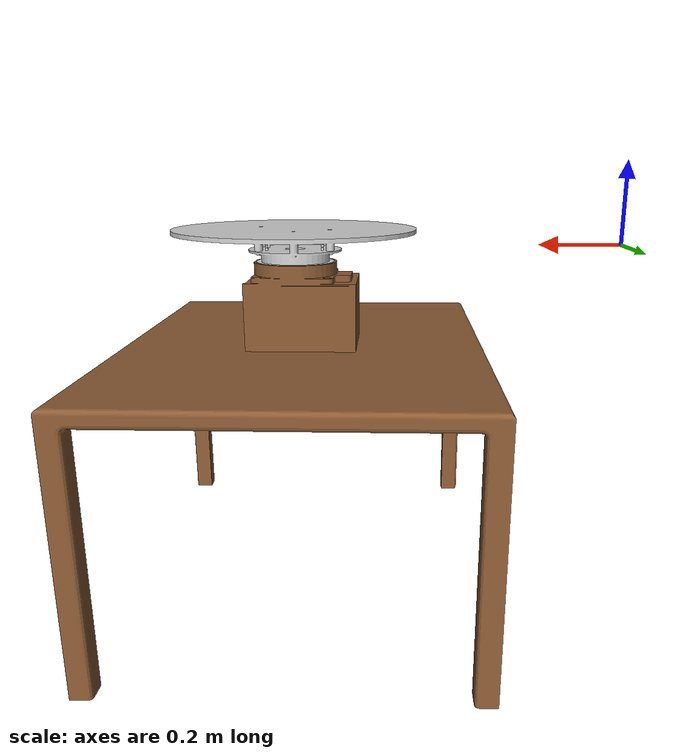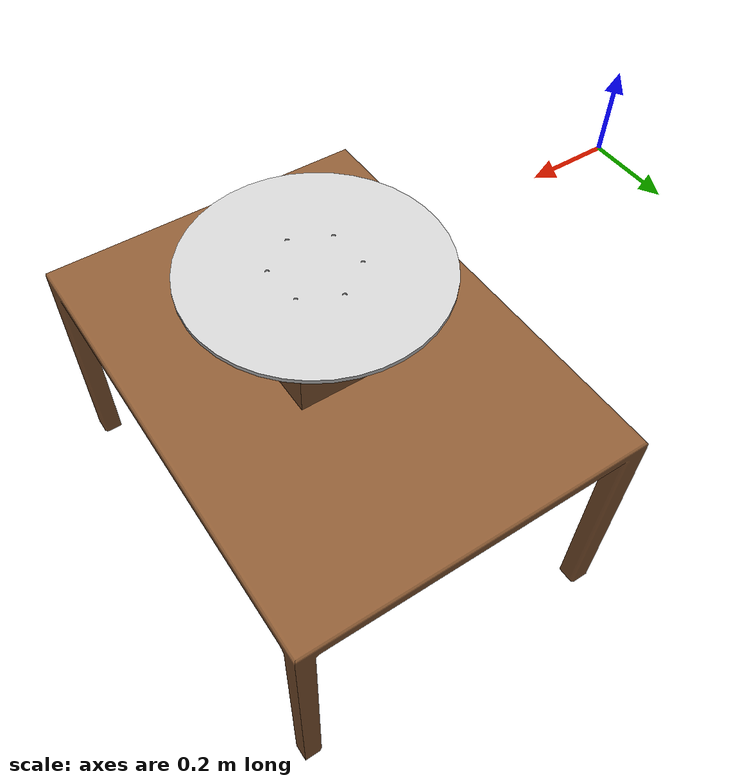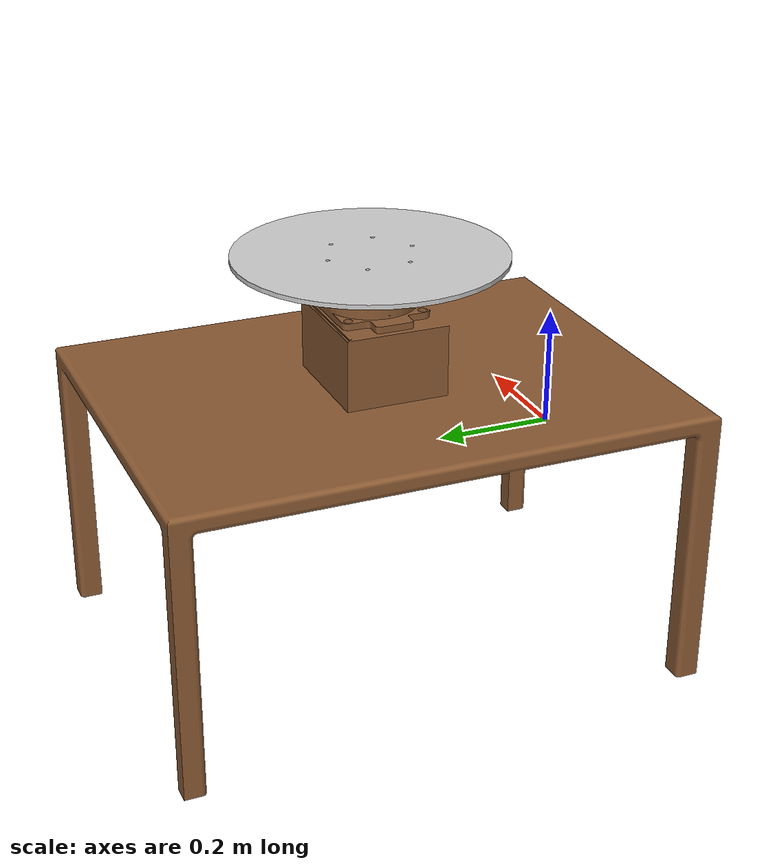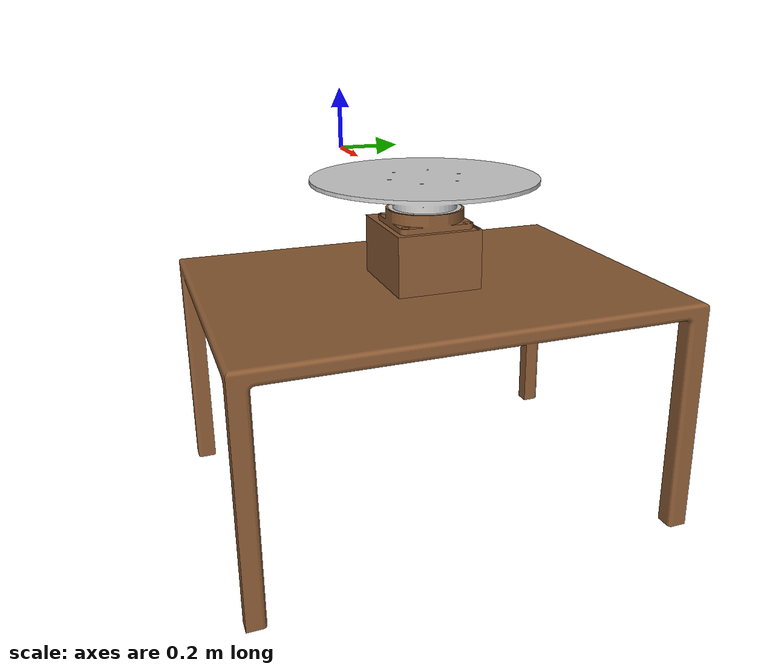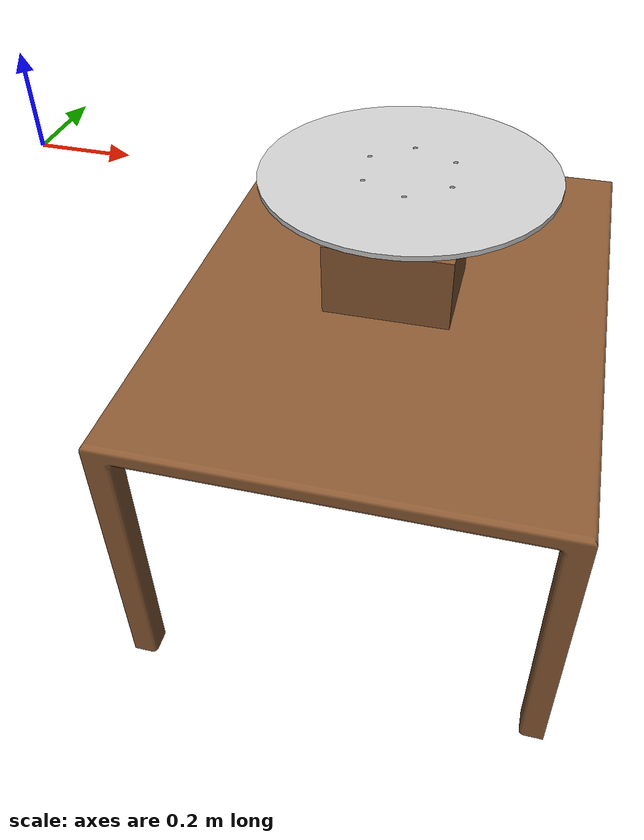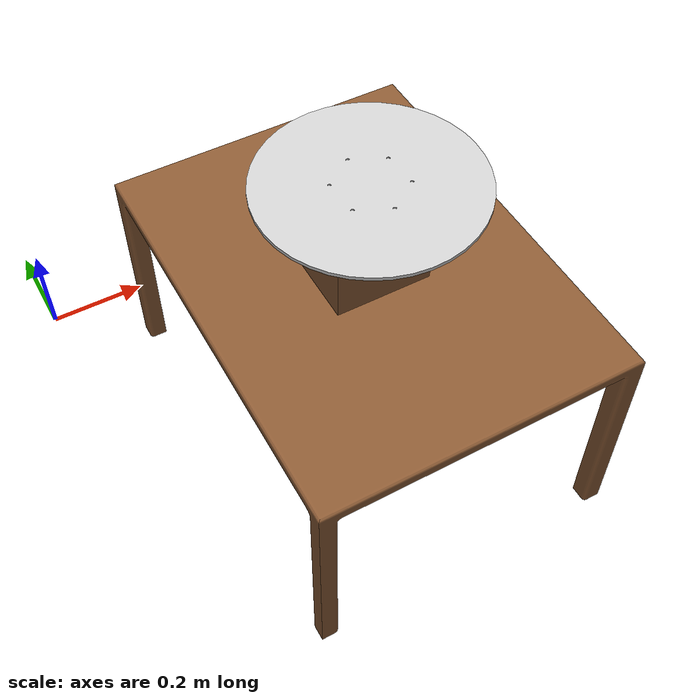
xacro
<?xml version="1.0" encoding="utf-8"?>
<robot name="turn_table" xmlns:xacro="http://www.ros.org/wiki/xacro">
  <xacro:include filename="$(find turn_table_robot)/urdf/turn_table.gazebo" />
  <material name="aluminum">
    <color rgba="0.8 0.8 0.8 1"/>
  </material>

  <material name="gray">
    <color rgba=".54 .35 .2 1"/>
  </material>
  <gazebo reference="rotation_Link">
       <material>Gazebo/Blue</material>
    </gazebo>
  <link name="base">
    <inertial>
      <origin xyz="5.47630436823313 0.00445137401296207 0.127274647707627" rpy="0 0 0" />
      <mass value="53" />
      <inertia
        ixx="4.69052174516768"
        ixy="-2.85464416367111E-06"
        ixz="6.14968020065979E-06"
        iyy="11.0842686073968"
        iyz="-1.23849027826522E-05"
        izz="7.82834235009259" />
    </inertial>
    <visual>
      <origin
        xyz="0.652066186 -5.47629333274696 -0.3"
        rpy="0 0 1.57079" />
      <geometry>
        <mesh
          filename="package://turn_table_robot/meshes/base_link.STL" />
      </geometry>
      <material name="gray"/>
    </visual>
    <collision>
      <origin
        xyz="0 0 0"
        rpy="0 0 0" />
      <geometry>
        <mesh
          filename="package://turn_table_robot/meshes/base_link.STL" />
      </geometry>
    </collision>
  </link>

  <link name = "world"/>
  <joint name ="fixed" type="fixed">
  	<parent link = "world"/>
  	<child link= "base"/>
  </joint>

  <link
    name="rotation_Link">
    <inertial>
      <origin
        xyz="-9.32587340685131E-14 -9.32032229172819E-14 0.0772872732553641"
        rpy="0 0 0" />
      <mass
        value="4.54714819339239" />
      <inertia
        ixx="0.0677428262810966"
        ixy="-3.53126796518736E-18"
        ixz="-8.0168446404932E-14"
        iyy="0.0677428262810966"
        iyz="-8.07156753739356E-14"
        izz="0.134697984247435" />
    </inertial>
    <visual>
      <origin
        xyz="0 0 -0.071"
        rpy="0 0 0" />
      <geometry>
        <mesh
          filename="package://turn_table_robot/meshes/rotation_Link.STL" />
      </geometry>
      <material name="aluminum"/>
    </visual>
    <collision>
      <origin
        xyz="0 0 -0.071"
        rpy="0 0 0" />
      <geometry>
        <mesh
          filename="package://turn_table_robot/meshes/rotation_Link.STL" />
      </geometry>
    </collision>
  </link>
  <joint
    name="joint"
    type="revolute">
    <origin
      xyz="0.8 0 0.0"
      rpy="0 0 0" />
    <parent link="base" />
    <child link="rotation_Link" />
    <axis
      xyz="0 0 1" />
    <limit effort="1000.0" lower="-3.14" upper="3.14" velocity="0.5"/>
    <dynamics damping="0.7" />
  </joint>

  <!-- transmission -->
  <transmission name="trans">
    <type>transmission_interface/SimpleTransmission</type>
    <joint name="joint">
      <hardwareInterface>hardware_interface/EffortJointInterface</hardwareInterface>
    </joint>
    <actuator name="motor">
      <hardwareInterface>hardware_interface/EffortJointInterface</hardwareInterface>
      <mechanicalReduction>1</mechanicalReduction>
    </actuator>
  </transmission>

</robot>
